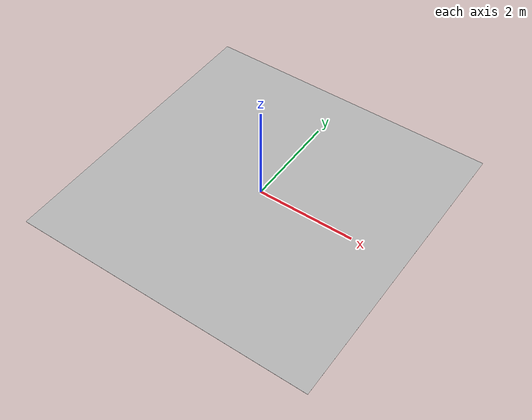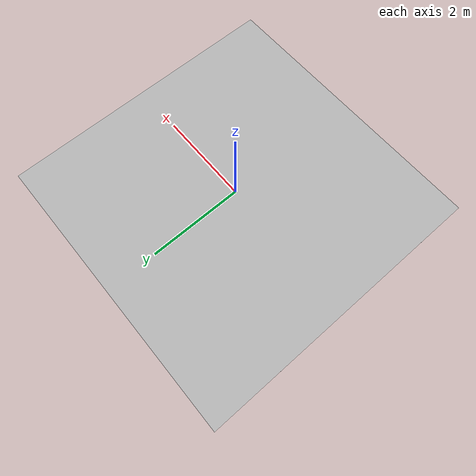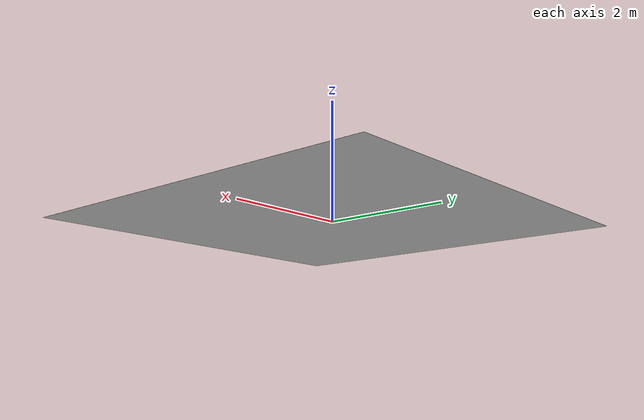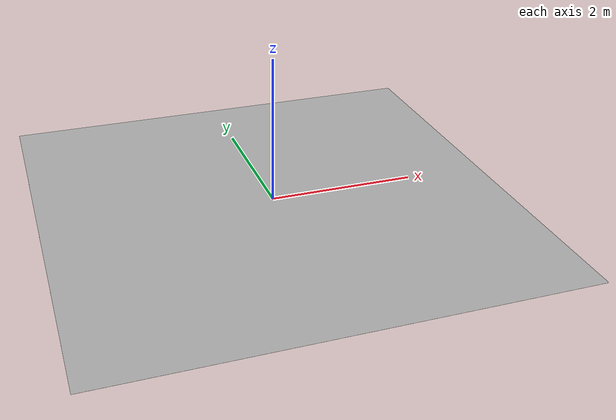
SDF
<?xml version='1.0'?>
<sdf version='1.4'>
  <model name='marker0_50cm_massless'>
    <static>1</static>
    <link name="marker0">
      <gravity>false</gravity>
      <visual name="visual">
        <geometry>
          <box>
            <size>6.2 6.2 0.001</size>
          </box>
        </geometry>
        <material>
          <script>
      <uri>model://marker0_50cm_massless/materials/scripts</uri>
      <uri>model://marker0_50cm_massless/materials/textures</uri>
            <name>Aruco/marker0_50cm</name>
          </script>
        </material>
      </visual>
      <collision name="collision">
        <geometry>
          <box>
            <size>6.2 6.2 0.02</size>
          </box>
        </geometry>
      </collision>
    </link>
  </model>
</sdf>
